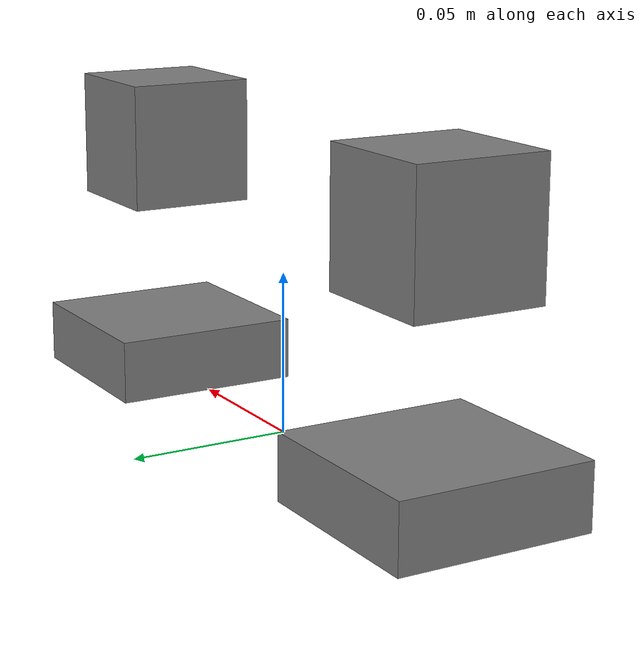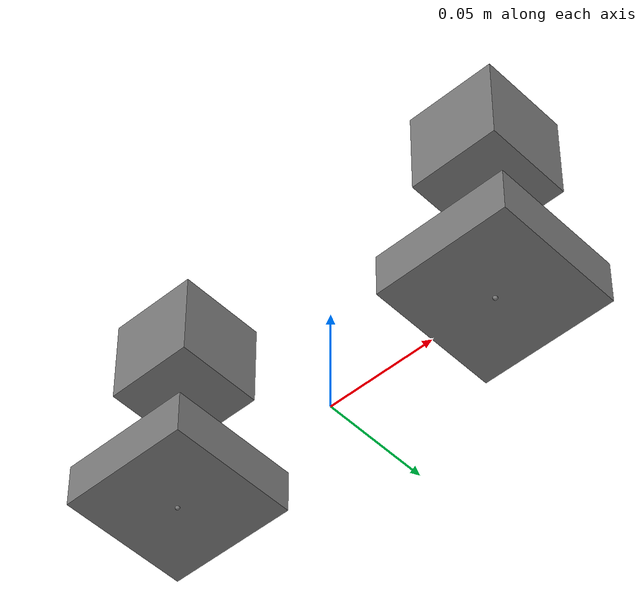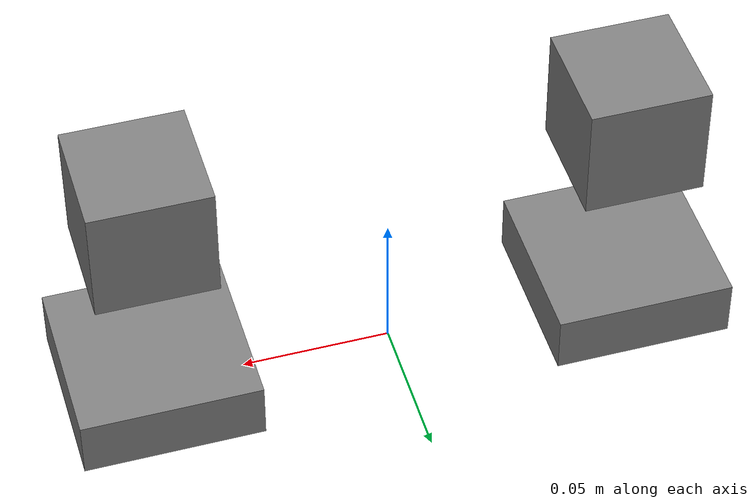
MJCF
<?xml version="1.0" encoding="utf-8"?>
<!-- Complete MJCF-compatible teaching fixture with geometry and collision. -->
<mujoco model="contact_grid_chart_fixture">
  <option timestep="0.002" integrator="Euler" gravity="0 0 -9.81" />
  <worldbody>
    <!-- Each slide joint separates its carrier from the world's welded body group. -->
    <body name="left_contact_grid_carrier" pos="-0.08 0 0">
      <joint name="left_contact_grid_mount_joint" type="slide" axis="1 0 0" stiffness="1000" damping="5" />
      <site name="left_contact_grid_site" size=".001" />
      <geom name="left_contact_grid_surface" type="box" pos="0 0 .01" size=".03 .03 .01" mass=".2" />
    </body>
    <!-- Independent 0.1 kg and 0.2 kg falling loads. -->
    <body name="left_contact_grid_load" pos="-0.08 0 .08">
      <freejoint name="left_contact_grid_free" />
      <geom type="box" size=".02 .02 .02" mass="0.1" />
    </body>
    <body name="right_contact_grid_carrier" pos="0.08 0 0">
      <joint name="right_contact_grid_mount_joint" type="slide" axis="1 0 0" stiffness="1000" damping="5" />
      <site name="right_contact_grid_site" size=".001" />
      <geom name="right_contact_grid_surface" type="box" pos="0 0 .01" size=".03 .03 .01" mass=".2" />
    </body>
    <body name="right_contact_grid_load" pos="0.08 0 .08">
      <freejoint name="right_contact_grid_free" />
      <geom type="box" size=".02 .02 .02" mass="0.2" />
    </body>
  </worldbody>
  <!-- Typed site references bind two independent Orca algorithm instances. -->
  <custom>
    <text name="orca.sensor.v1/left_contact_grid/plugin" data="com.orca.examples.contact_grid" />
    <tuple name="orca.sensor.v1/left_contact_grid/site">
      <element objtype="site" objname="left_contact_grid_site" />
    </tuple>
    <text name="orca.sensor.v1/right_contact_grid/plugin" data="com.orca.examples.contact_grid" />
    <tuple name="orca.sensor.v1/right_contact_grid/site">
      <element objtype="site" objname="right_contact_grid_site" />
    </tuple>
  </custom>
</mujoco>
